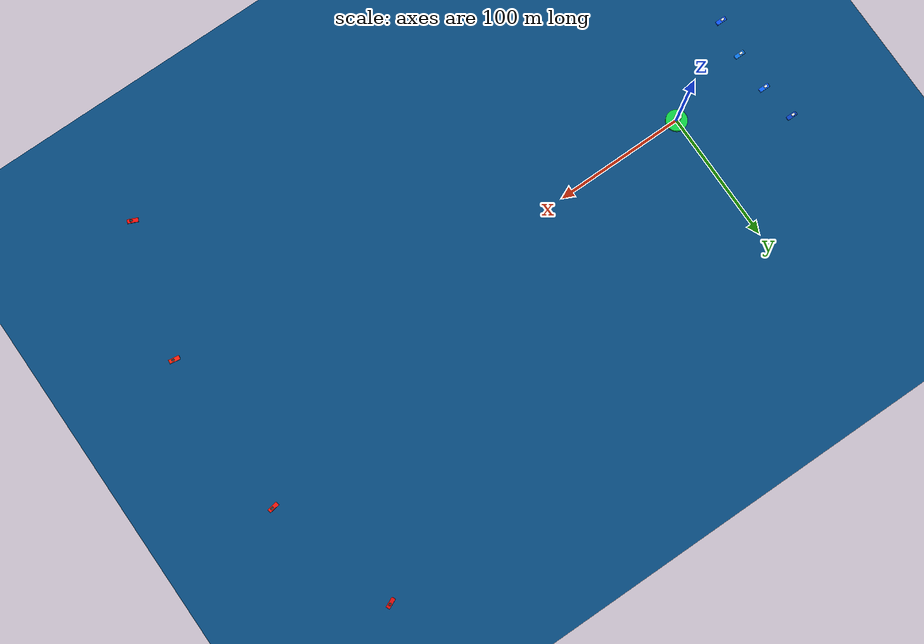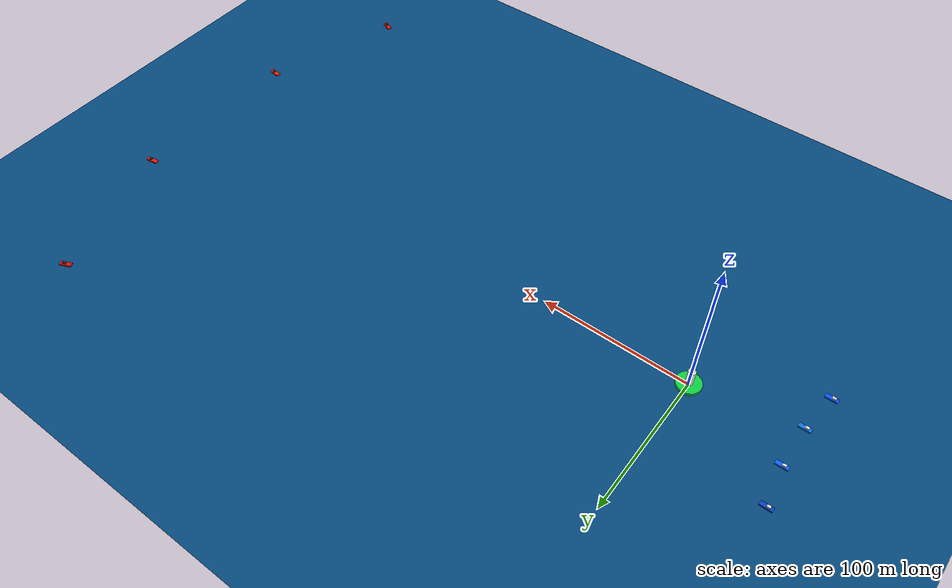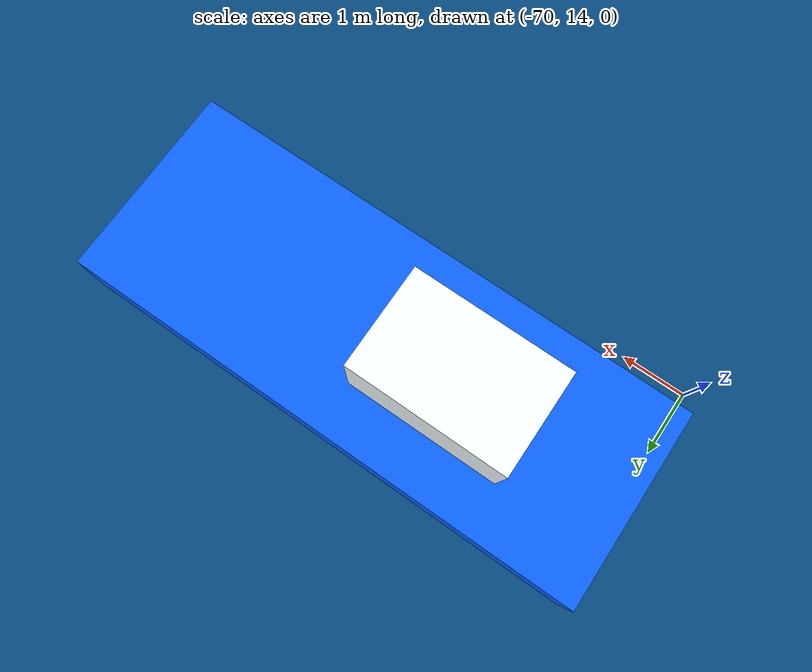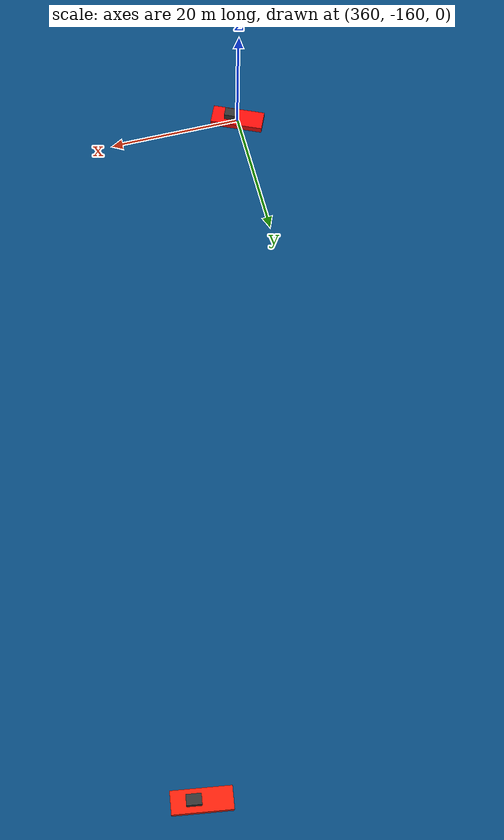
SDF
<sdf version="1.10">
  <world name="defense">
    <plugin filename="gz-sim-physics-system" name="gz::sim::systems::Physics"/>
    <plugin filename="gz-sim-user-commands-system" name="gz::sim::systems::UserCommands"/>
    <plugin filename="gz-sim-scene-broadcaster-system" name="gz::sim::systems::SceneBroadcaster"/>
    <plugin filename="gz-sim-contact-system" name="gz::sim::systems::Contact"/>
    <physics type="ode">
      <max_step_size>0.01</max_step_size>
      <real_time_factor>1</real_time_factor>
      <real_time_update_rate>100</real_time_update_rate>
    </physics>
    <gravity>0 0 -9.8</gravity>
    <scene>
      <ambient>0.55 0.58 0.6 1</ambient>
      <background>0.78 0.84 0.9 1</background>
      <grid>true</grid>
      <shadows>true</shadows>
    </scene>

    <light name="sun" type="directional">
      <pose>0 0 80 0.4 0.2 0</pose>
      <cast_shadows>true</cast_shadows>
      <intensity>1.2</intensity>
      <direction>-0.35 0.15 -0.92</direction>
      <diffuse>0.9 0.9 0.84 1</diffuse>
      <specular>0.25 0.25 0.22 1</specular>
    </light>

    <model name="sea_surface">
      <static>true</static>
      <link name="sea_link">
        <collision name="sea_collision">
          <geometry>
            <plane>
              <normal>0 0 1</normal>
              <size>900 520</size>
            </plane>
          </geometry>
          <surface>
            <friction>
              <ode>
                <mu>0.9</mu>
                <mu2>0.9</mu2>
              </ode>
            </friction>
          </surface>
        </collision>
        <visual name="sea_visual">
          <pose>0 0 -0.02 0 0 0</pose>
          <geometry>
            <plane>
              <normal>0 0 1</normal>
              <size>900 520</size>
            </plane>
          </geometry>
          <material>
            <ambient>0.02 0.16 0.28 1</ambient>
            <diffuse>0.02 0.28 0.48 1</diffuse>
            <specular>0.15 0.22 0.28 1</specular>
          </material>
        </visual>
      </link>
    </model>

    <model name="base_camp">
      <static>true</static>
      <pose>0 0 0 0 0 0</pose>
      <link name="base_link">
        <collision name="base_collision">
          <pose>0 0 1 0 0 0</pose>
          <geometry>
            <cylinder>
              <radius>8</radius>
              <length>2</length>
            </cylinder>
          </geometry>
        </collision>
        <visual name="base_platform">
          <pose>0 0 1 0 0 0</pose>
          <geometry>
            <cylinder>
              <radius>8</radius>
              <length>2</length>
            </cylinder>
          </geometry>
          <material>
            <ambient>0.02 0.45 0.16 1</ambient>
            <diffuse>0.05 0.8 0.26 1</diffuse>
            <specular>0.1 0.25 0.1 1</specular>
          </material>
        </visual>
        <visual name="base_tower">
          <pose>0 0 7 0 0 0</pose>
          <geometry>
            <cylinder>
              <radius>2.4</radius>
              <length>12</length>
            </cylinder>
          </geometry>
          <material>
            <ambient>0.85 0.88 0.82 1</ambient>
            <diffuse>0.95 0.98 0.9 1</diffuse>
          </material>
        </visual>
        <visual name="base_beacon">
          <pose>0 0 13.5 0 0 0</pose>
          <geometry>
            <sphere>
              <radius>1.4</radius>
            </sphere>
          </geometry>
          <material>
            <ambient>1 0.75 0.05 1</ambient>
            <diffuse>1 0.85 0.1 1</diffuse>
            <emissive>1 0.65 0.05 1</emissive>
          </material>
        </visual>
      </link>
    </model>

    <model name="own_01">
      <pose>-70 -42 0.55 0 0 0</pose>
      <link name="hull"><collision name="c"><geometry><box><size>8 3 1</size></box></geometry></collision><visual name="h"><geometry><box><size>8 3 1</size></box></geometry><material><ambient>0.02 0.12 0.35 1</ambient><diffuse>0.04 0.32 0.95 1</diffuse></material></visual><visual name="cab"><pose>-1.2 0 1.05 0 0 0</pose><geometry><box><size>2.3 1.5 1.2</size></box></geometry><material><ambient>0.85 0.88 0.9 1</ambient><diffuse>0.95 0.98 1 1</diffuse></material></visual></link>
      <plugin filename="gz-sim-velocity-control-system" name="gz::sim::systems::VelocityControl"><topic>/model/own_01/cmd_vel</topic><control_linear_velocity>true</control_linear_velocity><control_angular_velocity>true</control_angular_velocity></plugin>
    </model>
    <model name="own_02">
      <pose>-66 -14 0.55 0 0 0</pose>
      <link name="hull"><collision name="c"><geometry><box><size>8 3 1</size></box></geometry></collision><visual name="h"><geometry><box><size>8 3 1</size></box></geometry><material><ambient>0.02 0.18 0.32 1</ambient><diffuse>0.04 0.45 0.88 1</diffuse></material></visual><visual name="cab"><pose>-1.2 0 1.05 0 0 0</pose><geometry><box><size>2.3 1.5 1.2</size></box></geometry><material><ambient>0.85 0.88 0.9 1</ambient><diffuse>0.95 0.98 1 1</diffuse></material></visual></link>
      <plugin filename="gz-sim-velocity-control-system" name="gz::sim::systems::VelocityControl"><topic>/model/own_02/cmd_vel</topic><control_linear_velocity>true</control_linear_velocity><control_angular_velocity>true</control_angular_velocity></plugin>
    </model>
    <model name="own_03">
      <pose>-66 16 0.55 0 0 0</pose>
      <link name="hull"><collision name="c"><geometry><box><size>8 3 1</size></box></geometry></collision><visual name="h"><geometry><box><size>8 3 1</size></box></geometry><material><ambient>0.02 0.16 0.36 1</ambient><diffuse>0.04 0.38 1 1</diffuse></material></visual><visual name="cab"><pose>-1.2 0 1.05 0 0 0</pose><geometry><box><size>2.3 1.5 1.2</size></box></geometry><material><ambient>0.85 0.88 0.9 1</ambient><diffuse>0.95 0.98 1 1</diffuse></material></visual></link>
      <plugin filename="gz-sim-velocity-control-system" name="gz::sim::systems::VelocityControl"><topic>/model/own_03/cmd_vel</topic><control_linear_velocity>true</control_linear_velocity><control_angular_velocity>true</control_angular_velocity></plugin>
    </model>
    <model name="own_04">
      <pose>-70 44 0.55 0 0 0</pose>
      <link name="hull"><collision name="c"><geometry><box><size>8 3 1</size></box></geometry></collision><visual name="h"><geometry><box><size>8 3 1</size></box></geometry><material><ambient>0.02 0.1 0.28 1</ambient><diffuse>0.02 0.25 0.75 1</diffuse></material></visual><visual name="cab"><pose>-1.2 0 1.05 0 0 0</pose><geometry><box><size>2.3 1.5 1.2</size></box></geometry><material><ambient>0.85 0.88 0.9 1</ambient><diffuse>0.95 0.98 1 1</diffuse></material></visual></link>
      <plugin filename="gz-sim-velocity-control-system" name="gz::sim::systems::VelocityControl"><topic>/model/own_04/cmd_vel</topic><control_linear_velocity>true</control_linear_velocity><control_angular_velocity>true</control_angular_velocity></plugin>
    </model>

    <model name="enemy_01">
      <pose>360 -160 0.55 0 0 2.72</pose>
      <link name="hull"><collision name="c"><geometry><box><size>8 3 1</size></box></geometry></collision><visual name="h"><geometry><box><size>8 3 1</size></box></geometry><material><ambient>0.45 0.02 0.02 1</ambient><diffuse>0.95 0.05 0.04 1</diffuse></material></visual><visual name="cab"><pose>-1.0 0 1.0 0 0 0</pose><geometry><box><size>2.0 1.4 1.1</size></box></geometry><material><ambient>0.12 0.12 0.12 1</ambient><diffuse>0.2 0.2 0.2 1</diffuse></material></visual></link>
      <plugin filename="gz-sim-velocity-control-system" name="gz::sim::systems::VelocityControl"><topic>/model/enemy_01/cmd_vel</topic><control_linear_velocity>true</control_linear_velocity><control_angular_velocity>true</control_angular_velocity></plugin>
    </model>
    <model name="enemy_02">
      <pose>390 -60 0.55 0 0 2.99</pose>
      <link name="hull"><collision name="c"><geometry><box><size>8 3 1</size></box></geometry></collision><visual name="h"><geometry><box><size>8 3 1</size></box></geometry><material><ambient>0.5 0.04 0.01 1</ambient><diffuse>1 0.12 0.04 1</diffuse></material></visual><visual name="cab"><pose>-1.0 0 1.0 0 0 0</pose><geometry><box><size>2.0 1.4 1.1</size></box></geometry><material><ambient>0.12 0.12 0.12 1</ambient><diffuse>0.2 0.2 0.2 1</diffuse></material></visual></link>
      <plugin filename="gz-sim-velocity-control-system" name="gz::sim::systems::VelocityControl"><topic>/model/enemy_02/cmd_vel</topic><control_linear_velocity>true</control_linear_velocity><control_angular_velocity>true</control_angular_velocity></plugin>
    </model>
    <model name="enemy_03">
      <pose>390 65 0.55 0 0 -2.98</pose>
      <link name="hull"><collision name="c"><geometry><box><size>8 3 1</size></box></geometry></collision><visual name="h"><geometry><box><size>8 3 1</size></box></geometry><material><ambient>0.48 0.02 0.02 1</ambient><diffuse>0.9 0.08 0.05 1</diffuse></material></visual><visual name="cab"><pose>-1.0 0 1.0 0 0 0</pose><geometry><box><size>2.0 1.4 1.1</size></box></geometry><material><ambient>0.12 0.12 0.12 1</ambient><diffuse>0.2 0.2 0.2 1</diffuse></material></visual></link>
      <plugin filename="gz-sim-velocity-control-system" name="gz::sim::systems::VelocityControl"><topic>/model/enemy_03/cmd_vel</topic><control_linear_velocity>true</control_linear_velocity><control_angular_velocity>true</control_angular_velocity></plugin>
    </model>
    <model name="enemy_04">
      <pose>360 165 0.55 0 0 -2.71</pose>
      <link name="hull"><collision name="c"><geometry><box><size>8 3 1</size></box></geometry></collision><visual name="h"><geometry><box><size>8 3 1</size></box></geometry><material><ambient>0.42 0.01 0.01 1</ambient><diffuse>0.82 0.04 0.04 1</diffuse></material></visual><visual name="cab"><pose>-1.0 0 1.0 0 0 0</pose><geometry><box><size>2.0 1.4 1.1</size></box></geometry><material><ambient>0.12 0.12 0.12 1</ambient><diffuse>0.2 0.2 0.2 1</diffuse></material></visual></link>
      <plugin filename="gz-sim-velocity-control-system" name="gz::sim::systems::VelocityControl"><topic>/model/enemy_04/cmd_vel</topic><control_linear_velocity>true</control_linear_velocity><control_angular_velocity>true</control_angular_velocity></plugin>
    </model>
  </world>
</sdf>
